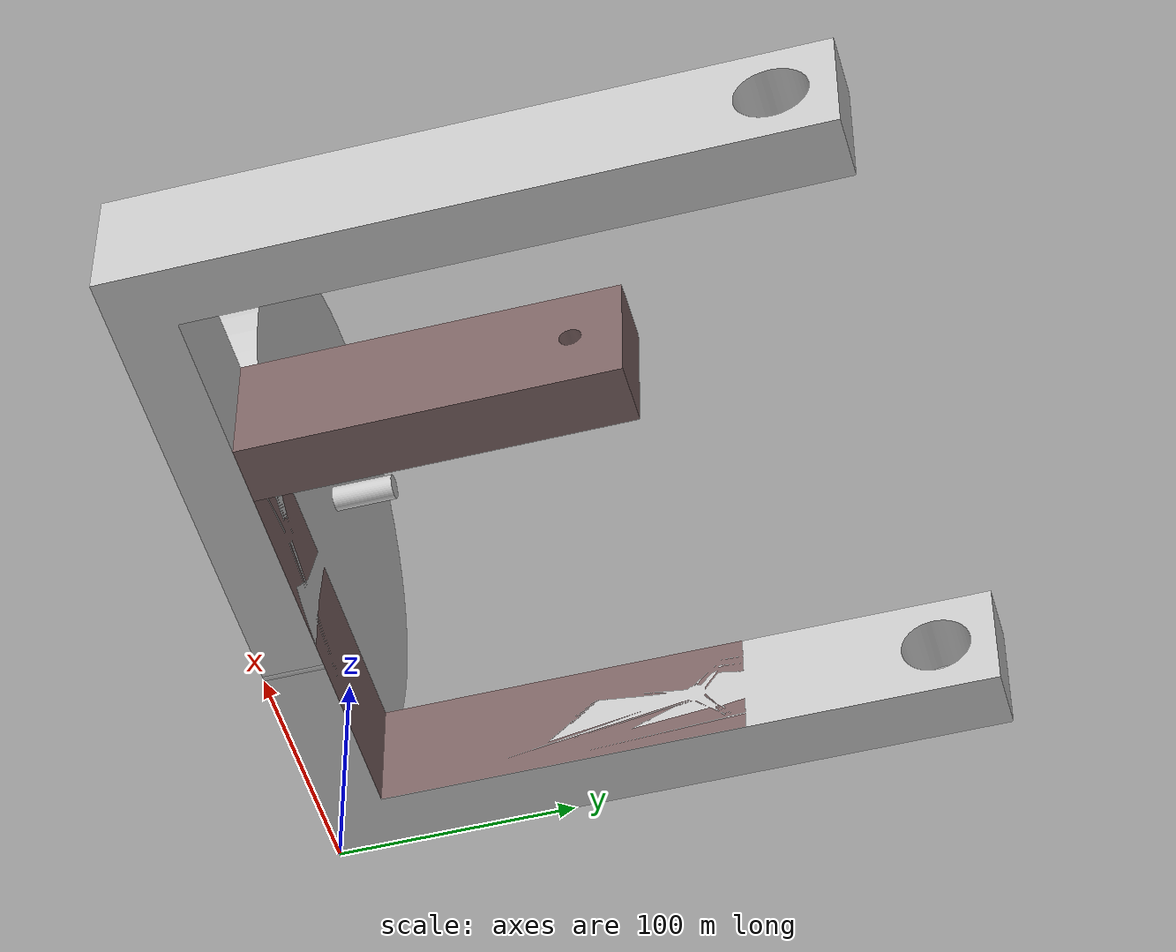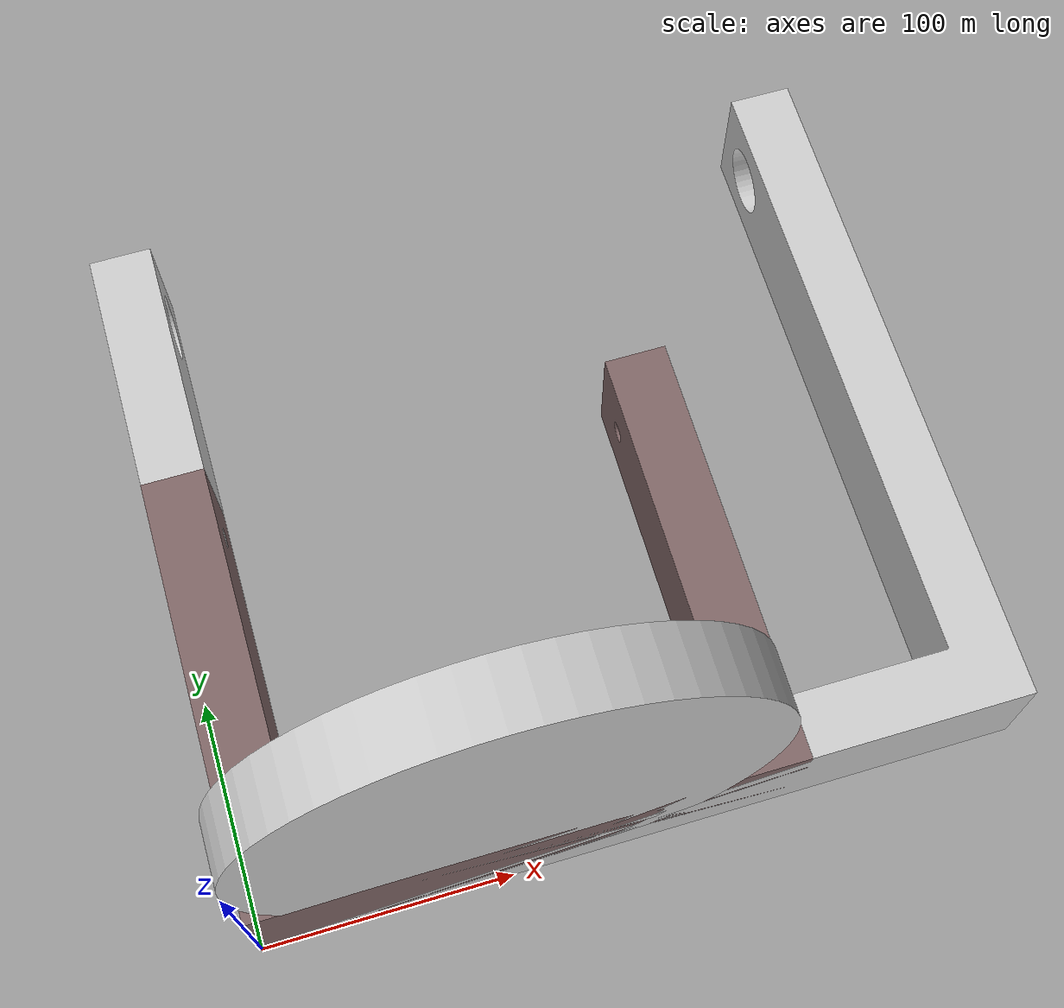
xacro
<?xml version="1.0" ?>
<robot name="swivel" xmlns:xacro="http://www.ros.org/wiki/xacro">

  <!-- colors -->
   <xacro:include filename="$(find swivel_description)/model/common.urdf.xacro"/>

  <!-- ros_control plugin -->
   <gazebo>
      <plugin name="gazebo_ros_control" filename="libros_control_gazebo_plugin.so">
        <ns>/swivel</ns>
      </plugin>
    </gazebo>

  <link name="base">
    <visual>
      <origin xyz="0 0 0" rpy="0 0 0" />
      <geometry >
	<mesh filename="package://swivel_description/meshes/Swivel_Base.stl" />
      </geometry>
      <material name="SwivelLightGray" />
    </visual>
     <inertial>
        <mass value="9"/>
        <inertia ixx="9.0" ixy="0.0" ixz="0.0" iyy="9.0" iyz="0.0" izz="9.0"/>
      </inertial>
  </link>

  <link name="link_1">
    <visual>
      <origin xyz="0 0 0.06" rpy="0 0 0" />
      <geometry >
	<mesh filename="package://swivel_description/meshes/Swivel_Link_1.stl" />
      </geometry>
      <material name="SwivelLightGray" />
     </visual>
     <inertial>
        <mass value="4"/>
        <inertia ixx="4.0" ixy="0.0" ixz="0.0" iyy="4.0" iyz="0.0" izz="4.0"/>
      </inertial>
  </link>

  <joint name="swivel_J0" type="revolute">
    <parent link="base"/>
    <child link="link_1"/>
    <origin xyz="0 0 0" rpy="0 0 0" />
    <axis xyz="0 0 1" />
    <limit lower="0" upper="3.14" effort="10"
	   velocity="1.0" />
    <joint_properties damping="0.0" friction="0.0"/>
  </joint>

  <link name="link_2">
    <visual>
      <origin xyz="0 0 0" rpy="0 0 0" />
      <geometry >
	<mesh filename="package://swivel_description/meshes/Swivel_Link_2.stl" />
      </geometry>
      <material name="SwivelRed" />
    </visual>
        <inertial>
        <mass value="2"/>
        <inertia ixx="2.0" ixy="0.0" ixz="0.0" iyy="2.0" iyz="0.0" izz="2.0"/>
      </inertial>
  </link>

  <joint name="swivel_J1" type="revolute">
    <parent link="link_1"/>
    <child link="link_2"/>
    <origin xyz="0 0 0.190" rpy="0 0 0" />
    <axis xyz="1 0 0" />
    <limit lower="-1.745" upper="2.356" effort="10"
	   velocity="1.0" />
    <joint_properties damping="0.0" friction="0.0"/>
  </joint>

  <link name="camera_mount">
    <visual>
      <origin xyz="0 0 0" rpy="0 0 0" />
      <geometry >
  	<box size="0.5 0.5 0.5"/>
      </geometry>
      <material name="SwivelGreen" />
    </visual>
    <inertial>
        <mass value="0.5"/>
        <inertia ixx="0.5" ixy="0.0" ixz="0.0" iyy="0.5" iyz="0.0" izz="0.5"/>
      </inertial>
  </link>

  <joint name="camera_J2" type="fixed">
    <parent link="link_2"/>
    <child link="camera_mount"/>
    <origin xyz="0 0 0" rpy="0 0 0" />
    <axis xyz="1 0 0" />
    <limit lower="-2.094" upper="2.670" effort="10"
	   velocity="1.0" />
    <joint_properties damping="0.0" friction="0.0"/>
  </joint>

</robot>

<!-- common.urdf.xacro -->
<robot include-once="true" xmlns:xacro="http://ros.org/wiki/xacro">

  <!-- Mathematical Constants -->
  <xacro:property name="PI" value="3.1415926535897931" />

  <!-- Colors -->
  <xacro:property name="SwivelWhite"     value="1.0 1.0 1.0 1"/>
  <xacro:property name="SwivelLightGray" value="0.8 0.8 0.8 1"/>
  <xacro:property name="SwivelMedGray"   value="0.6 0.6 0.6 1"/>
  <xacro:property name="SwivelDarkGray"  value="0.4 0.4 0.4 1"/>
  <xacro:property name="SwivelRed"       value="0.5 0.4 0.4 1"/>
  <xacro:property name="SwivelGreen"     value="0.4 0.5 0.4 1"/>
  <xacro:property name="SwivelBlue"      value="0.4 0.4 0.5 1"/>

  <material name="SwivelWhite">    <color rgba="${SwivelWhite}"/></material>
  <material name="SwivelLightGray"><color rgba="${SwivelLightGray}"/></material>
  <material name="SwivelMedGray">  <color rgba="${SwivelMedGray}"/></material>
  <material name="SwivelDarkGray"> <color rgba="${SwivelDarkGray}"/></material>
  <material name="SwivelRed">      <color rgba="${SwivelRed}"/></material>
  <material name="SwivelGreen">    <color rgba="${SwivelGreen}"/></material>
  <material name="SwivelBlue">     <color rgba="${SwivelBlue}"/></material>
</robot>
